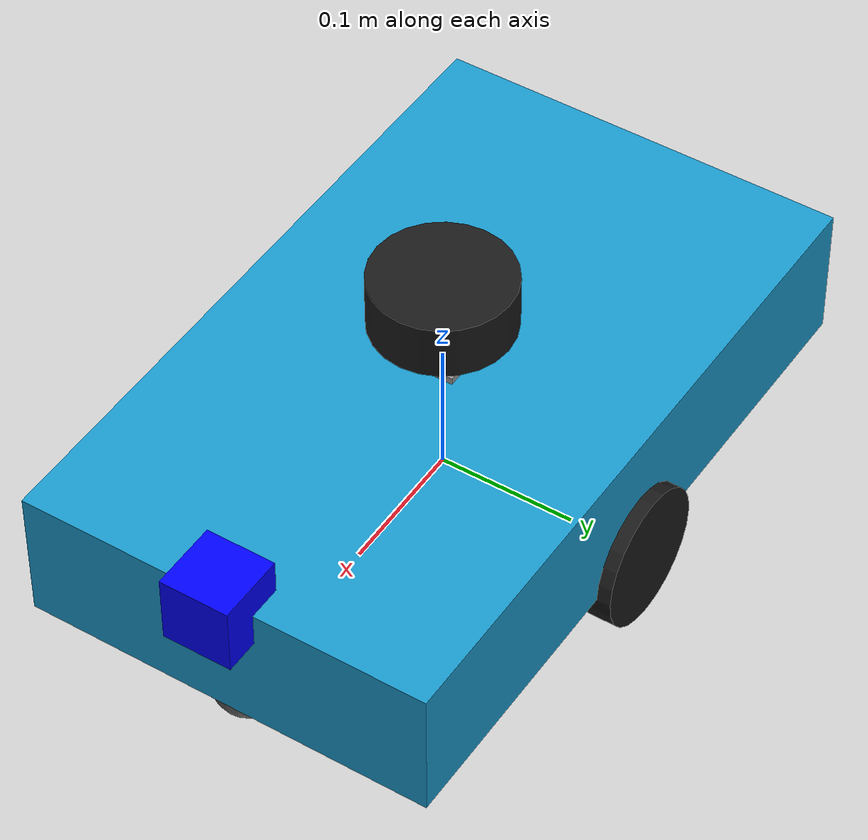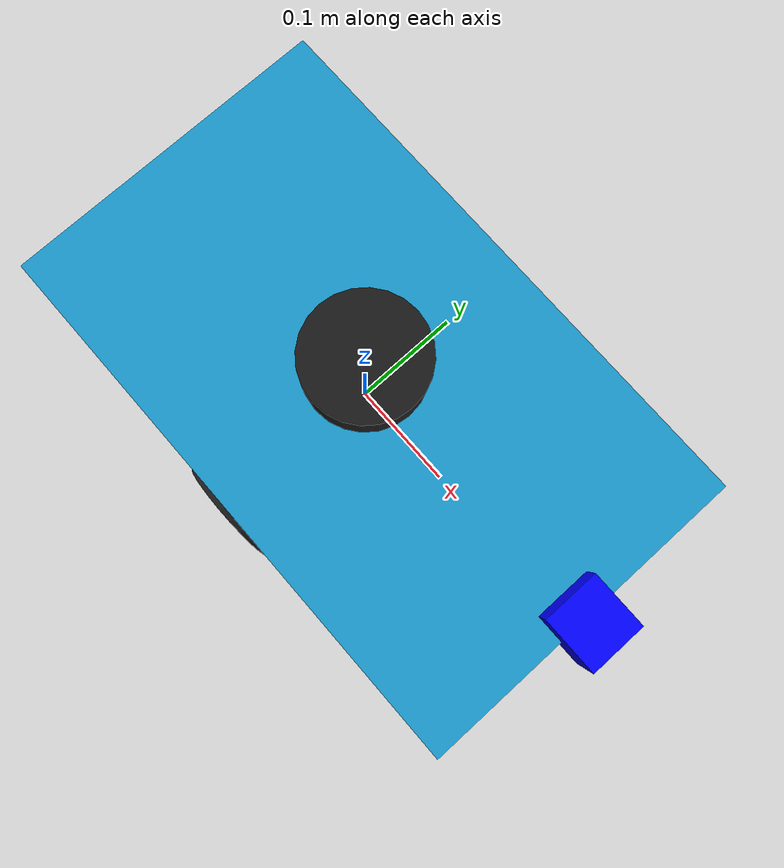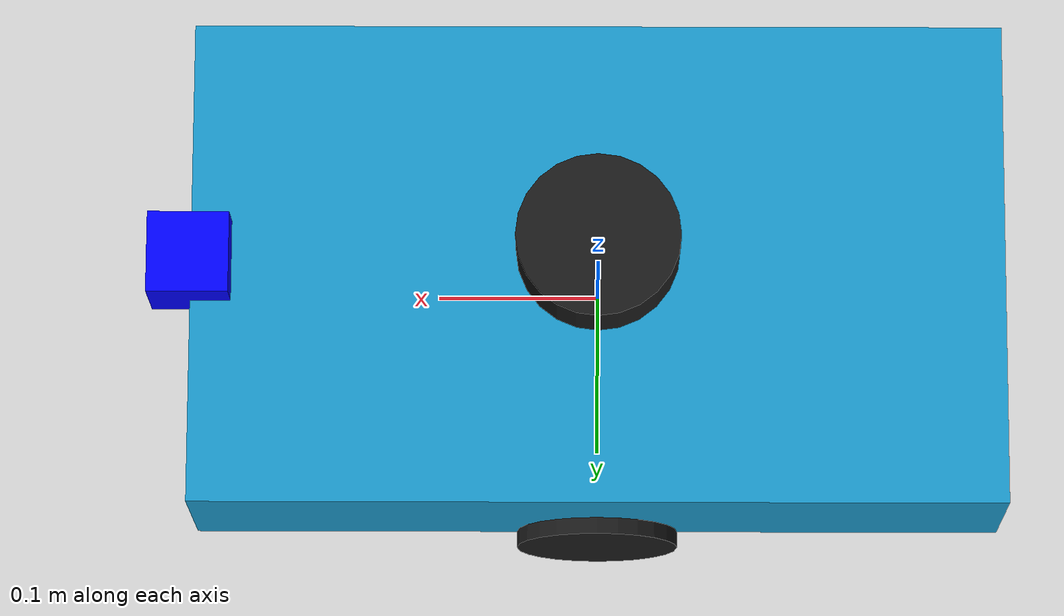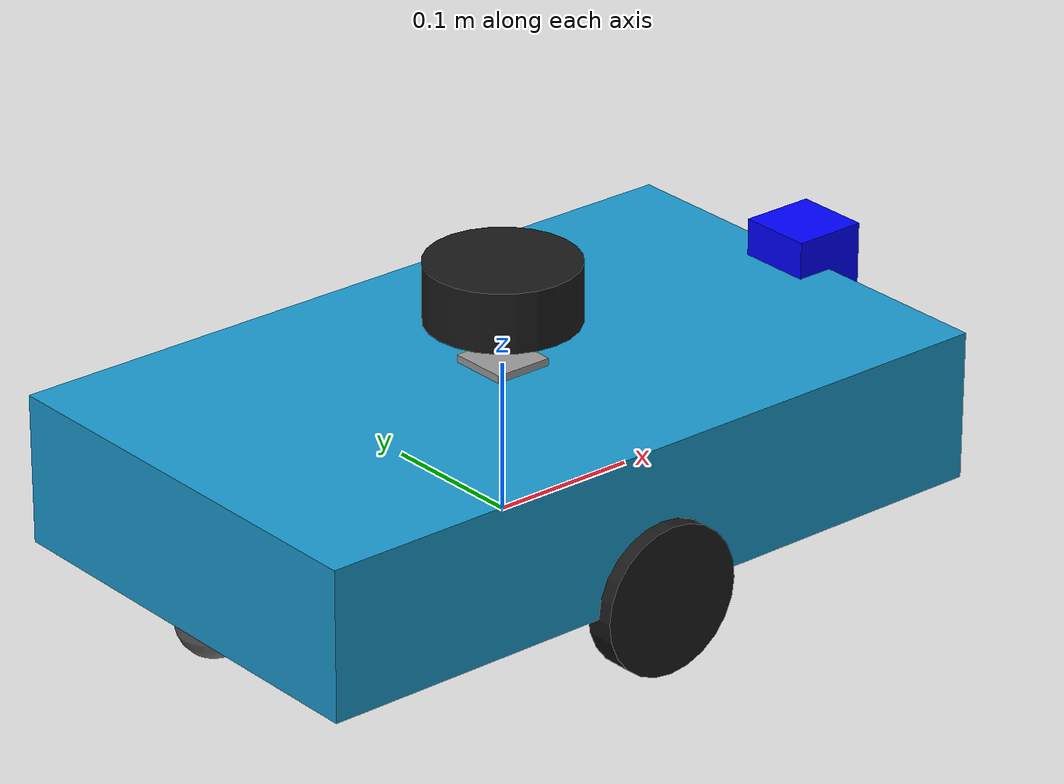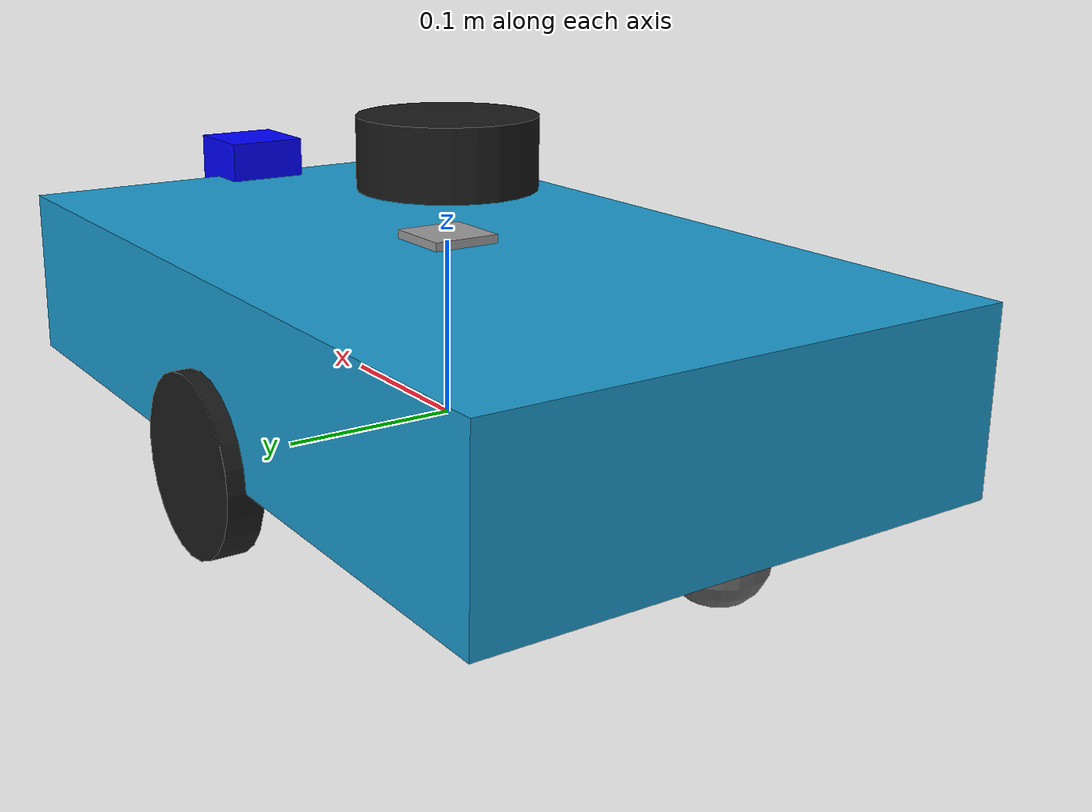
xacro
<?xml version="1.0"?>
<robot xmlns:xacro="http://ros.org/wiki/xacro" name="my_robot">

    <!-- ====================== Global Parameters ====================== -->
    <!-- Body -->
    <xacro:property name="body_length" value="0.5" />
    <xacro:property name="body_width" value="0.3" />
    <xacro:property name="body_height" value="0.1" />
    <xacro:property name="body_mass" value="6.0" />
    <xacro:property name="body_color" value="0.1 0.6 0.8 1.0" />

    <!-- Wheels -->
    <xacro:property name="wheel_radius" value="0.05" />
    <xacro:property name="wheel_thickness" value="0.02" />
    <xacro:property name="wheel_mass" value="1.0" />

    <!-- Casters -->
    <xacro:property name="caster_radius" value="0.025" />
    <xacro:property name="caster_mass" value="0.2" />

    <!-- ====================== Includes ====================== -->
    <xacro:include filename="$(find robot_description)/urdf/body.urdf.xacro" />
    <xacro:include filename="$(find robot_description)/urdf/wheel.urdf.xacro" />
    <xacro:include filename="$(find robot_description)/urdf/caster_wheel.urdf.xacro" />
    <xacro:include filename="$(find robot_description)/urdf/imu.urdf.xacro" />
    <xacro:include filename="$(find robot_description)/urdf/lidar.urdf.xacro" />
    <xacro:include filename="$(find robot_description)/urdf/depth_camera.urdf.xacro" />

    <!-- ====================== Active Wheels ====================== -->
    <xacro:add_wheel wheel_name="left_wheel"
        parent_link="base_link"
        x="0.0"
        y="${body_width/2 + wheel_thickness/2 - 0.01}"
        z="0.0" />

    <xacro:add_wheel wheel_name="right_wheel"
        parent_link="base_link"
        x="0.0"
        y="${-1 * (body_width/2 + wheel_thickness/2 - 0.01)}"
        z="0.0" />

    <!-- ====================== Caster Wheels ====================== -->
    <xacro:add_caster_wheel caster_name="front_caster"
        parent_link="base_link"
        x="${body_length/2 - caster_radius}"
        y="0.0"
        z="0.0" />

    <xacro:add_caster_wheel caster_name="rear_caster"
        parent_link="base_link"
        x="${-1 * (body_length/2 - caster_radius)}"
        y="0.0"
        z="0.0" />

    <!-- ====================== Virtual Base Footprint ====================== -->
    <link name="base_footprint" />

    <joint name="base_footprint_joint" type="fixed">
        <parent link="base_link" />
        <child link="base_footprint" />
        <origin xyz="0 0 ${-body_height/2}" rpy="0 0 0" />
    </joint>

    <xacro:add_imu imu_name="imu_link"
        parent_link="base_link"
        x="0.0" y="0.0" z="${body_height}" />
    <xacro:add_lidar lidar_name="lidar_link"
        parent_link="base_link"
        x="0.0" y="0.0" z="${body_height + 0.05}" />
    <xacro:depth_camera_macro parent_link="base_link"
        camera_name="depth_camera"
        xyz="${body_length/2}  0.0 0.1"
        rpy="0 0 0" />

</robot>

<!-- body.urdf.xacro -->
<robot xmlns:xacro="http://ros.org/wiki/xacro" name="robot_body">

  <!-- Inertial calculator macro -->
  <xacro:macro name="inertial_box" params="mass x y z">
    <inertial>
      <origin xyz="0 0 0" rpy="0 0 0"/>
      <mass value="${mass}"/>
      <inertia
        ixx="${(1/12.0)*mass*(y*y + z*z)}"
        iyy="${(1/12.0)*mass*(x*x + z*z)}"
        izz="${(1/12.0)*mass*(x*x + y*y)}"
        ixy="0.0" ixz="0.0" iyz="0.0"/>
    </inertial>
  </xacro:macro>

  <!-- Base body link -->
  <link name="base_link">
    <visual>
      <geometry>
        <box size="${body_length} ${body_width} ${body_height}"/>
      </geometry>
      <origin xyz="0 0 ${body_height/2}" rpy="0 0 0"/>
      <material name="robot_body_color">
        <color rgba="${body_color}"/>
      </material>
    </visual>

    <collision>
      <geometry>
        <box size="${body_length} ${body_width} ${body_height}"/>
      </geometry>
      <origin xyz="0 0 ${body_height/2}" rpy="0 0 0"/>
    </collision>

    <xacro:inertial_box mass="${body_mass}" x="${body_length}" y="${body_width}" z="${body_height}"/>
  </link>

</robot>

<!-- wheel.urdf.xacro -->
<robot xmlns:xacro="http://ros.org/wiki/xacro">

  <!-- ========== Wheel Link ========== -->
  <xacro:macro name="add_wheel" params="wheel_name parent_link x y z">
    <link name="${wheel_name}">
      <visual>
        <origin xyz="0 0 0" rpy="1.5708 0 0"/>
        <geometry>
          <cylinder radius="${wheel_radius}" length="${wheel_thickness}"/>
        </geometry>
        <material name="black">
          <color rgba="0.1 0.1 0.1 1.0"/>
        </material>
      </visual>

      <collision>
        <origin xyz="0 0 0" rpy="1.5708 0 0"/>
        <geometry>
          <cylinder radius="${wheel_radius}" length="${wheel_thickness}"/>
        </geometry>
      </collision>

      <inertial>
        <mass value="${wheel_mass}"/>
        <origin xyz="0 0 0" rpy="0 0 0"/>
        <inertia
          ixx="0.001" ixy="0.0" ixz="0.0"
          iyy="0.001" iyz="0.0"
          izz="0.001"/>
      </inertial>
    </link>

    <!-- Revolute joint -->
    <joint name="${wheel_name}_joint" type="continuous">
      <parent link="${parent_link}"/>
      <child link="${wheel_name}"/>
      <origin xyz="${x} ${y} ${z}" rpy="0 0 0"/>
      <axis xyz="0 1 0"/>
      <limit effort="10.0" velocity="10.0"/>
      <dynamics damping="0.1" friction="0.1"/>
    </joint>
  </xacro:macro>

</robot>

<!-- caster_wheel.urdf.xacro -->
<robot xmlns:xacro="http://ros.org/wiki/xacro">

  <!-- ========== Caster Wheel ========== -->
  <xacro:macro name="add_caster_wheel" params="caster_name parent_link x y z">
    <link name="${caster_name}">
      <visual>
        <origin xyz="0 0 0" rpy="0 0 0"/>
        <geometry>
          <sphere radius="${caster_radius}"/>
        </geometry>
        <material name="grey">
          <color rgba="0.4 0.4 0.4 1.0"/>
        </material>
      </visual>

      <collision>
        <origin xyz="0 0 0" rpy="0 0 0"/>
        <geometry>
          <sphere radius="${caster_radius}"/>
        </geometry>
      </collision>

      <inertial>
        <mass value="${caster_mass}"/>
        <origin xyz="0 0 0" rpy="0 0 0"/>
        <inertia
          ixx="0.0001" ixy="0.0" ixz="0.0"
          iyy="0.0001" iyz="0.0"
          izz="0.0001"/>
      </inertial>
    </link>

    <!-- Fixed joint -->
    <joint name="${caster_name}_joint" type="fixed">
      <parent link="${parent_link}"/>
      <child link="${caster_name}"/>
      <origin xyz="${x} ${y} ${z}" rpy="0 0 0"/>
    </joint>
  </xacro:macro>

</robot>

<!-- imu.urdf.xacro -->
<robot xmlns:xacro="http://ros.org/wiki/xacro">

  <!-- IMU Macro -->
  <xacro:macro name="add_imu" params="imu_name parent_link x y z">

    <link name="${imu_name}">
      <visual>
        <origin xyz="0 0 0" rpy="0 0 0"/>
        <geometry>
          <box size="0.04 0.04 0.01"/>
        </geometry>
        <material name="grey">
          <color rgba="0.6 0.6 0.6 1.0"/>
        </material>
      </visual>

      <collision>
        <origin xyz="0 0 0" rpy="0 0 0"/>
        <geometry>
          <box size="0.04 0.04 0.01"/>
        </geometry>
      </collision>

      <inertial>
        <mass value="0.01"/>
        <origin xyz="0 0 0" rpy="0 0 0"/>
        <inertia
          ixx="0.00001" ixy="0.0" ixz="0.0"
          iyy="0.00001" iyz="0.0"
          izz="0.00001"/>
      </inertial>
    </link>

    <joint name="${imu_name}_joint" type="fixed">
      <parent link="${parent_link}"/>
      <child link="${imu_name}"/>
      <origin xyz="${x} ${y} ${z}" rpy="0 0 0"/>
    </joint>

  </xacro:macro>

</robot>

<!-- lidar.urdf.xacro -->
<robot xmlns:xacro="http://ros.org/wiki/xacro">

  <!-- LiDAR Macro -->
  <xacro:macro name="add_lidar" params="lidar_name parent_link x y z">

    <link name="${lidar_name}">
      <visual>
        <origin xyz="0 0 0" rpy="0 0 0"/>
        <geometry>
          <cylinder length="0.04" radius="0.05"/>
        </geometry>
        <material name="black">
          <color rgba="0.1 0.1 0.1 1.0"/>
        </material>
      </visual>

      <collision>
        <origin xyz="0 0 0" rpy="0 0 0"/>
        <geometry>
          <cylinder length="0.04" radius="0.05"/>
        </geometry>
      </collision>

      <inertial>
        <mass value="0.05"/>
        <origin xyz="0 0 0" rpy="0 0 0"/>
        <inertia
          ixx="0.00001" ixy="0.0" ixz="0.0"
          iyy="0.00001" iyz="0.0"
          izz="0.00001"/>
      </inertial>
    </link>

    <joint name="${lidar_name}_joint" type="fixed">
      <parent link="${parent_link}"/>
      <child link="${lidar_name}"/>
      <origin xyz="${x} ${y} ${z}" rpy="0 0 0"/>
    </joint>

  </xacro:macro>

</robot>

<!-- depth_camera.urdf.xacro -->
<robot xmlns:xacro="http://ros.org/wiki/xacro">

<xacro:macro name="depth_camera_macro" params="parent_link camera_name xyz rpy:='0 0 0'">
  <link name="${camera_name}_link">
    <visual>
      <geometry>
        <box size="0.05 0.05 0.05"/>
      </geometry>
<material name="blue">

        <color rgba="0.0 0.0 1.0 1.0"/>
      </material>
    </visual>
    <collision>
      <geometry>
        <box size="0.05 0.05 0.05"/>
      </geometry>
    </collision>
    <inertial>
      <mass value="0.1"/>
      <inertia ixx="0.0001" iyy="0.0001" izz="0.0001"
               ixy="0.0" ixz="0.0" iyz="0.0"/>
    </inertial>
  </link>

  <joint name="${camera_name}_joint" type="fixed">
    <parent link="${parent_link}"/>
    <child link="${camera_name}_link"/>
    <origin xyz="${xyz}" rpy="${rpy}"/>
  </joint>

</xacro:macro>

</robot>
